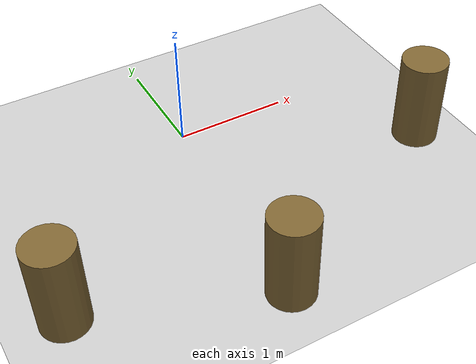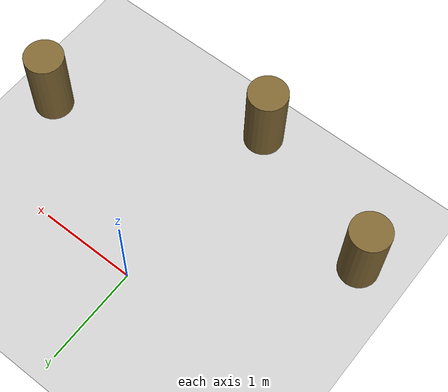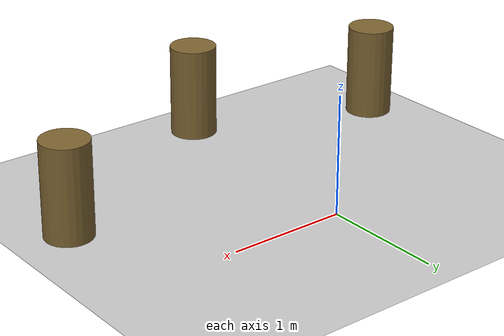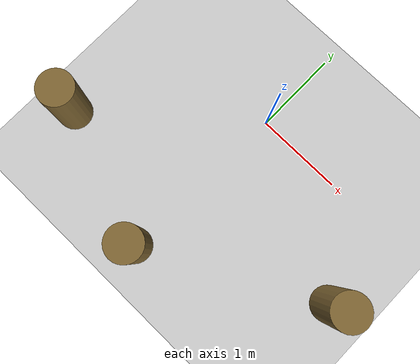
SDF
<sdf version="1.6">
 <world name="default">
  <model name="ground_plane">
   <static>1</static>
   <link name="link">
    <collision name="collision">
     <geometry><plane><normal>0 0 1</normal><size>100 100</size></plane></geometry>
     <surface><friction><ode><mu>100</mu><mu2>50</mu2></ode></friction></surface>
    </collision>
    <visual name="visual">
     <cast_shadows>0</cast_shadows>
     <geometry><plane><normal>0 0 1</normal><size>100 100</size></plane></geometry>
     <material>
      <script><uri>file://media/materials/scripts/gazebo.material</uri><name>Gazebo/Grey</name></script>
     </material>
    </visual>
   </link>
  </model>
  <model name="mini_cylinder_clone_0">
   <link name="link">
    <inertial>
     <mass>1</mass>
     <inertia><ixx>0.145833</ixx><ixy>0</ixy><ixz>0</ixz><iyy>0.145833</iyy><iyz>0</iyz><izz>0.125</izz></inertia>
    </inertial>
    <visual name="visual">
     <geometry><cylinder><radius>0.2</radius><length>0.8</length></cylinder></geometry>
     <material>
      <script><name>Gazebo/Grey</name><uri>file://media/materials/scripts/gazebo.material</uri></script>
      <shader type="vertex"><normal_map>__default__</normal_map></shader>
      <ambient>0.5 0.4 0.2 1</ambient>
      <diffuse>0.7 0.7 0.7 1</diffuse>
      <specular>0.01 0.01 0.01 1</specular>
      <emissive>0 0 0 1</emissive>
     </material>
    </visual>
    <collision name="collision">
     <geometry><cylinder><radius>0.2</radius><length>0.8</length></cylinder></geometry>
     <surface>
      <friction>
       <ode><mu>1</mu><mu2>1</mu2><fdir1>0 0 0</fdir1><slip1>0</slip1><slip2>0</slip2></ode>
       <torsional>
        <coefficient>1</coefficient>
        <patch_radius>0</patch_radius>
        <surface_radius>0</surface_radius>
        <use_patch_radius>1</use_patch_radius>
        <ode><slip>0</slip></ode>
       </torsional>
      </friction>
      <bounce><restitution_coefficient>0</restitution_coefficient><threshold>1e+06</threshold></bounce>
      <contact>
       <collide_without_contact>0</collide_without_contact>
       <collide_without_contact_bitmask>1</collide_without_contact_bitmask>
       <collide_bitmask>1</collide_bitmask>
       <ode>
        <soft_cfm>0</soft_cfm>
        <soft_erp>0.2</soft_erp>
        <kp>1e+13</kp>
        <kd>1</kd>
        <max_vel>0.01</max_vel>
        <min_depth>0</min_depth>
       </ode>
       <bullet>
        <split_impulse>1</split_impulse>
        <split_impulse_penetration_threshold>-0.01</split_impulse_penetration_threshold>
        <soft_cfm>0</soft_cfm>
        <soft_erp>0.2</soft_erp>
        <kp>1e+13</kp>
        <kd>1</kd>
       </bullet>
      </contact>
     </surface>
    </collision>
   </link>
   <static>0</static>
   <pose>1.82803 -0.988124 0.399991 -1e-06 -0 -0</pose>
  </model>
  <model name="mini_cylinder_clone_1">
   <link name="link">
    <inertial>
     <mass>1</mass>
     <inertia><ixx>0.145833</ixx><ixy>0</ixy><ixz>0</ixz><iyy>0.145833</iyy><iyz>0</iyz><izz>0.125</izz></inertia>
    </inertial>
    <visual name="visual">
     <geometry><cylinder><radius>0.2</radius><length>0.8</length></cylinder></geometry>
     <material>
      <script><name>Gazebo/Grey</name><uri>file://media/materials/scripts/gazebo.material</uri></script>
      <shader type="vertex"><normal_map>__default__</normal_map></shader>
      <ambient>0.5 0.4 0.2 1</ambient>
      <diffuse>0.7 0.7 0.7 1</diffuse>
      <specular>0.01 0.01 0.01 1</specular>
      <emissive>0 0 0 1</emissive>
     </material>
    </visual>
    <collision name="collision">
     <geometry><cylinder><radius>0.2</radius><length>0.8</length></cylinder></geometry>
     <surface>
      <friction>
       <ode><mu>1</mu><mu2>1</mu2><fdir1>0 0 0</fdir1><slip1>0</slip1><slip2>0</slip2></ode>
       <torsional>
        <coefficient>1</coefficient>
        <patch_radius>0</patch_radius>
        <surface_radius>0</surface_radius>
        <use_patch_radius>1</use_patch_radius>
        <ode><slip>0</slip></ode>
       </torsional>
      </friction>
      <bounce><restitution_coefficient>0</restitution_coefficient><threshold>1e+06</threshold></bounce>
      <contact>
       <collide_without_contact>0</collide_without_contact>
       <collide_without_contact_bitmask>1</collide_without_contact_bitmask>
       <collide_bitmask>1</collide_bitmask>
       <ode>
        <soft_cfm>0</soft_cfm>
        <soft_erp>0.2</soft_erp>
        <kp>1e+13</kp>
        <kd>1</kd>
        <max_vel>0.01</max_vel>
        <min_depth>0</min_depth>
       </ode>
       <bullet>
        <split_impulse>1</split_impulse>
        <split_impulse_penetration_threshold>-0.01</split_impulse_penetration_threshold>
        <soft_cfm>0</soft_cfm>
        <soft_erp>0.2</soft_erp>
        <kp>1e+13</kp>
        <kd>1</kd>
       </bullet>
      </contact>
     </surface>
    </collision>
   </link>
   <static>0</static>
   <pose>-1.63256 -1.40581 0.399999 1e-06 -0 0</pose>
  </model>
  <model name="mini_cylinder_clone_6">
   <link name="link">
    <inertial>
     <mass>1</mass>
     <inertia><ixx>0.145833</ixx><ixy>0</ixy><ixz>0</ixz><iyy>0.145833</iyy><iyz>0</iyz><izz>0.125</izz></inertia>
    </inertial>
    <visual name="visual">
     <geometry><cylinder><radius>0.2</radius><length>0.8</length></cylinder></geometry>
     <material>
      <script><name>Gazebo/Grey</name><uri>file://media/materials/scripts/gazebo.material</uri></script>
      <shader type="vertex"><normal_map>__default__</normal_map></shader>
      <ambient>0.5 0.4 0.2 1</ambient>
      <diffuse>0.7 0.7 0.7 1</diffuse>
      <specular>0.01 0.01 0.01 1</specular>
      <emissive>0 0 0 1</emissive>
     </material>
    </visual>
    <collision name="collision">
     <geometry><cylinder><radius>0.2</radius><length>0.8</length></cylinder></geometry>
     <surface>
      <friction>
       <ode><mu>1</mu><mu2>1</mu2><fdir1>0 0 0</fdir1><slip1>0</slip1><slip2>0</slip2></ode>
       <torsional>
        <coefficient>1</coefficient>
        <patch_radius>0</patch_radius>
        <surface_radius>0</surface_radius>
        <use_patch_radius>1</use_patch_radius>
        <ode><slip>0</slip></ode>
       </torsional>
      </friction>
      <bounce><restitution_coefficient>0</restitution_coefficient><threshold>1e+06</threshold></bounce>
      <contact>
       <collide_without_contact>0</collide_without_contact>
       <collide_without_contact_bitmask>1</collide_without_contact_bitmask>
       <collide_bitmask>1</collide_bitmask>
       <ode>
        <soft_cfm>0</soft_cfm>
        <soft_erp>0.2</soft_erp>
        <kp>1e+13</kp>
        <kd>1</kd>
        <max_vel>0.01</max_vel>
        <min_depth>0</min_depth>
       </ode>
       <bullet>
        <split_impulse>1</split_impulse>
        <split_impulse_penetration_threshold>-0.01</split_impulse_penetration_threshold>
        <soft_cfm>0</soft_cfm>
        <soft_erp>0.2</soft_erp>
        <kp>1e+13</kp>
        <kd>1</kd>
       </bullet>
      </contact>
     </surface>
    </collision>
   </link>
   <static>0</static>
   <pose>-0.087585 -1.98936 0.399999 -1e-06 -2e-06 0</pose>
  </model>
 </world>
</sdf>
